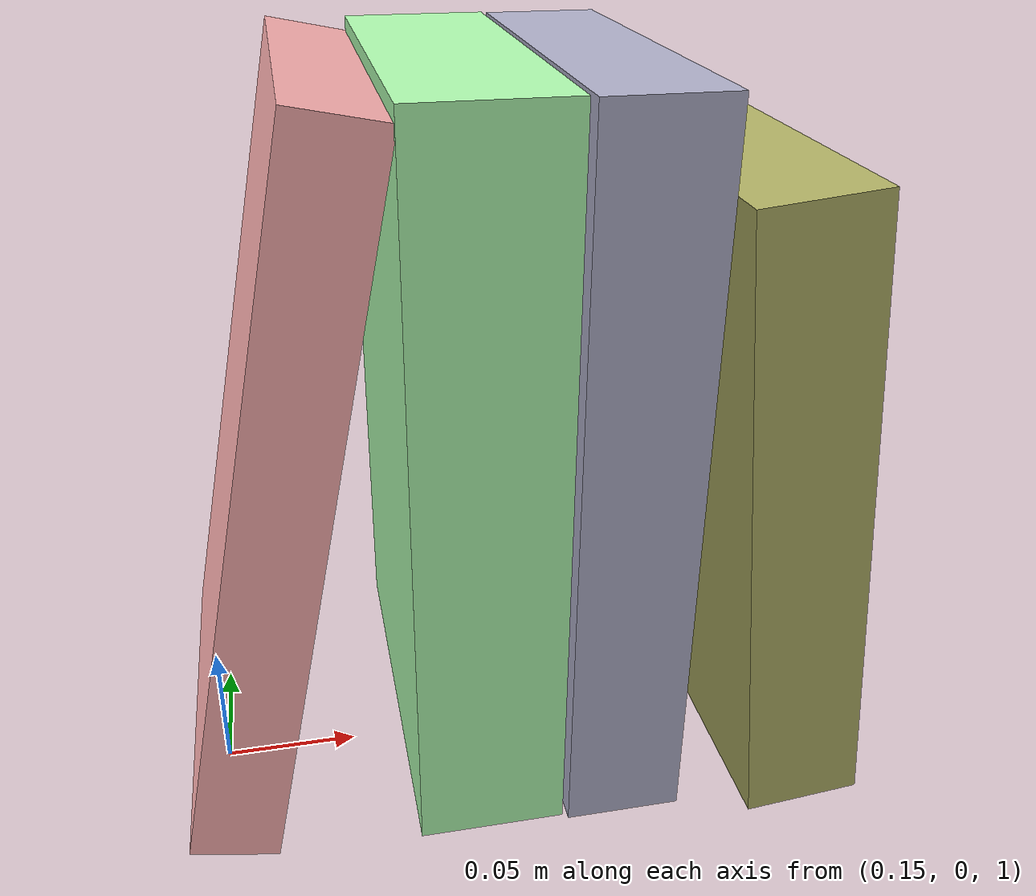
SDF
<?xml version='1.0'?>
<sdf version='1.7'>
  <model name='my_books'>
    <link name='link'>
      <inertial>
        <mass>1</mass>
        <inertia>
          <ixx>0.166667</ixx>
          <ixy>0</ixy>
          <ixz>0</ixz>
          <iyy>0.166667</iyy>
          <iyz>0</iyz>
          <izz>0.166667</izz>
        </inertia>
        <pose>0 0 1.15 0 -0 0</pose>
      </inertial>
      <self_collide>0</self_collide>
      <enable_wind>0</enable_wind>
      <kinematic>0</kinematic>
      <pose>0.17974 0 -0.00246 0 -0 0</pose>
      <gravity>1</gravity>
      <visual name='visual'>
        <geometry>
          <box>
            <size>0.03 0.15 0.25</size>
          </box>
        </geometry>
        <material>
          <script>
            <name>Gazebo/Grey</name>
            <uri>file://media/materials/scripts/gazebo.material</uri>
          </script>
          <shader type='pixel'>
            <normal_map>__default__</normal_map>
          </shader>
          <ambient>0.6 0.45 0.3 1</ambient>
          <diffuse>1 0.7 0.7 1</diffuse>
          <specular>0.01 0.01 0.01 1</specular>
          <emissive>0 0 0 1</emissive>
        </material>
        <pose>0 0 1.15 0 0.2 0</pose>
        <transparency>0</transparency>
        <cast_shadows>1</cast_shadows>
      </visual>
      <collision name='collision'>
        <laser_retro>0</laser_retro>
        <max_contacts>10</max_contacts>
        <pose>0 0 1.15 0 0.2 0</pose>
        <geometry>
          <box>
            <size>0.03 0.15 0.25</size>
          </box>
        </geometry>
        <surface>
          <friction>
            <ode>
              <mu>1</mu>
              <mu2>1</mu2>
              <fdir1>0 0 0</fdir1>
              <slip1>0</slip1>
              <slip2>0</slip2>
            </ode>
            <torsional>
              <coefficient>1</coefficient>
              <patch_radius>0</patch_radius>
              <surface_radius>0</surface_radius>
              <use_patch_radius>1</use_patch_radius>
              <ode>
                <slip>0</slip>
              </ode>
            </torsional>
          </friction>
          <bounce>
            <restitution_coefficient>0</restitution_coefficient>
            <threshold>1e+06</threshold>
          </bounce>
          <contact>
            <collide_without_contact>0</collide_without_contact>
            <collide_without_contact_bitmask>1</collide_without_contact_bitmask>
            <collide_bitmask>1</collide_bitmask>
            <ode>
              <soft_cfm>0</soft_cfm>
              <soft_erp>0.2</soft_erp>
              <kp>1e+13</kp>
              <kd>1</kd>
              <max_vel>0.01</max_vel>
              <min_depth>0</min_depth>
            </ode>
            <bullet>
              <split_impulse>1</split_impulse>
              <split_impulse_penetration_threshold>-0.01</split_impulse_penetration_threshold>
              <soft_cfm>0</soft_cfm>
              <soft_erp>0.2</soft_erp>
              <kp>1e+13</kp>
              <kd>1</kd>
            </bullet>
          </contact>
        </surface>
      </collision>
    </link>
    <link name='link_clone'>
      <inertial>
        <mass>1</mass>
        <inertia>
          <ixx>0.166667</ixx>
          <ixy>0</ixy>
          <ixz>0</ixz>
          <iyy>0.166667</iyy>
          <iyz>0</iyz>
          <izz>0.166667</izz>
        </inertia>
        <pose>0 0 1.15 0 -0 0</pose>
      </inertial>
      <self_collide>0</self_collide>
      <enable_wind>0</enable_wind>
      <kinematic>0</kinematic>
      <pose>0.243198 -0.002133 -0.00246 1e-05 -0 0</pose>
      <gravity>1</gravity>
      <visual name='visual'>
        <geometry>
          <box>
            <size>0.05 0.15 0.25</size>
          </box>
        </geometry>
        <material>
          <script>
            <name>Gazebo/Grey</name>
            <uri>file://media/materials/scripts/gazebo.material</uri>
          </script>
          <shader type='pixel'>
            <normal_map>__default__</normal_map>
          </shader>
          <ambient>0.3 0.5 0.3 1</ambient>
          <diffuse>0.7 1 0.7 1</diffuse>
          <specular>0.01 0.01 0.01 1</specular>
          <emissive>0 0 0 1</emissive>
        </material>
        <pose>0 0 1.15 0 -0 0</pose>
        <transparency>0</transparency>
        <cast_shadows>1</cast_shadows>
      </visual>
      <collision name='collision'>
        <laser_retro>0</laser_retro>
        <max_contacts>10</max_contacts>
        <pose>0 0 1.15 0 -0 0</pose>
        <geometry>
          <box>
            <size>0.05 0.15 0.25</size>
          </box>
        </geometry>
        <surface>
          <friction>
            <ode>
              <mu>1</mu>
              <mu2>1</mu2>
              <fdir1>0 0 0</fdir1>
              <slip1>0</slip1>
              <slip2>0</slip2>
            </ode>
            <torsional>
              <coefficient>1</coefficient>
              <patch_radius>0</patch_radius>
              <surface_radius>0</surface_radius>
              <use_patch_radius>1</use_patch_radius>
              <ode>
                <slip>0</slip>
              </ode>
            </torsional>
          </friction>
          <bounce>
            <restitution_coefficient>0</restitution_coefficient>
            <threshold>1e+06</threshold>
          </bounce>
          <contact>
            <collide_without_contact>0</collide_without_contact>
            <collide_without_contact_bitmask>1</collide_without_contact_bitmask>
            <collide_bitmask>1</collide_bitmask>
            <ode>
              <soft_cfm>0</soft_cfm>
              <soft_erp>0.2</soft_erp>
              <kp>1e+13</kp>
              <kd>1</kd>
              <max_vel>0.01</max_vel>
              <min_depth>0</min_depth>
            </ode>
            <bullet>
              <split_impulse>1</split_impulse>
              <split_impulse_penetration_threshold>-0.01</split_impulse_penetration_threshold>
              <soft_cfm>0</soft_cfm>
              <soft_erp>0.2</soft_erp>
              <kp>1e+13</kp>
              <kd>1</kd>
            </bullet>
          </contact>
        </surface>
      </collision>
    </link>
    <link name='link_clone_clone'>
      <inertial>
        <mass>1</mass>
        <inertia>
          <ixx>0.166667</ixx>
          <ixy>0</ixy>
          <ixz>0</ixz>
          <iyy>0.166667</iyy>
          <iyz>0</iyz>
          <izz>0.166667</izz>
        </inertia>
        <pose>0 0 1.15 0 -0 0</pose>
      </inertial>
      <self_collide>0</self_collide>
      <enable_wind>0</enable_wind>
      <kinematic>0</kinematic>
      <pose>0.289882 -0.003921 -0.00246 2e-05 -0 0</pose>
      <gravity>1</gravity>
      <visual name='visual'>
        <geometry>
          <box>
            <size>0.04 0.15 0.25</size>
          </box>
        </geometry>
        <material>
          <script>
            <name>Gazebo/Grey</name>
            <uri>file://media/materials/scripts/gazebo.material</uri>
          </script>
          <shader type='pixel'>
            <normal_map>__default__</normal_map>
          </shader>
          <ambient>0.3 0.3 0.8 1</ambient>
          <diffuse>0.7 0.7 0.8 1</diffuse>
          <specular>0.01 0.01 0.01 1</specular>
          <emissive>0 0 0 1</emissive>
        </material>
        <pose>0 0 1.15 0 -0 0</pose>
        <transparency>0</transparency>
        <cast_shadows>1</cast_shadows>
      </visual>
      <collision name='collision'>
        <laser_retro>0</laser_retro>
        <max_contacts>10</max_contacts>
        <pose>0 0 1.15 0 -0 0</pose>
        <geometry>
          <box>
            <size>0.04 0.15 0.25</size>
          </box>
        </geometry>
        <surface>
          <friction>
            <ode>
              <mu>1</mu>
              <mu2>1</mu2>
              <fdir1>0 0 0</fdir1>
              <slip1>0</slip1>
              <slip2>0</slip2>
            </ode>
            <torsional>
              <coefficient>1</coefficient>
              <patch_radius>0</patch_radius>
              <surface_radius>0</surface_radius>
              <use_patch_radius>1</use_patch_radius>
              <ode>
                <slip>0</slip>
              </ode>
            </torsional>
          </friction>
          <bounce>
            <restitution_coefficient>0</restitution_coefficient>
            <threshold>1e+06</threshold>
          </bounce>
          <contact>
            <collide_without_contact>0</collide_without_contact>
            <collide_without_contact_bitmask>1</collide_without_contact_bitmask>
            <collide_bitmask>1</collide_bitmask>
            <ode>
              <soft_cfm>0</soft_cfm>
              <soft_erp>0.2</soft_erp>
              <kp>1e+13</kp>
              <kd>1</kd>
              <max_vel>0.01</max_vel>
              <min_depth>0</min_depth>
            </ode>
            <bullet>
              <split_impulse>1</split_impulse>
              <split_impulse_penetration_threshold>-0.01</split_impulse_penetration_threshold>
              <soft_cfm>0</soft_cfm>
              <soft_erp>0.2</soft_erp>
              <kp>1e+13</kp>
              <kd>1</kd>
            </bullet>
          </contact>
        </surface>
      </collision>
    </link>
    <link name='link_clone_clone_clone'>
      <inertial>
        <mass>1</mass>
        <inertia>
          <ixx>0.166667</ixx>
          <ixy>0</ixy>
          <ixz>0</ixz>
          <iyy>0.166667</iyy>
          <iyz>0</iyz>
          <izz>0.166667</izz>
        </inertia>
        <pose>0 0 1.15 0 -0 0</pose>
      </inertial>
      <self_collide>0</self_collide>
      <enable_wind>0</enable_wind>
      <kinematic>0</kinematic>
      <pose>0.341401 -0.014976 -0.013259 3e-05 -0 0</pose>
      <gravity>1</gravity>
      <visual name='visual'>
        <geometry>
          <box>
            <size>0.04 0.15 0.22</size>
          </box>
        </geometry>
        <material>
          <script>
            <name>Gazebo/Grey</name>
            <uri>file://media/materials/scripts/gazebo.material</uri>
          </script>
          <shader type='pixel'>
            <normal_map>__default__</normal_map>
          </shader>
          <ambient>0.8 0.5 0.1 1</ambient>
          <diffuse>0.7 0.7 0.4 1</diffuse>
          <specular>0.01 0.01 0.01 1</specular>
          <emissive>0 0 0 1</emissive>
        </material>
        <pose>0 0 1.15 0 -0.1 0</pose>
        <transparency>0</transparency>
        <cast_shadows>1</cast_shadows>
      </visual>
      <collision name='collision'>
        <laser_retro>0</laser_retro>
        <max_contacts>10</max_contacts>
        <pose>0 0 1.15 0 -0.1 0</pose>
        <geometry>
          <box>
            <size>0.04 0.15 0.22</size>
          </box>
        </geometry>
        <surface>
          <friction>
            <ode>
              <mu>1</mu>
              <mu2>1</mu2>
              <fdir1>0 0 0</fdir1>
              <slip1>0</slip1>
              <slip2>0</slip2>
            </ode>
            <torsional>
              <coefficient>1</coefficient>
              <patch_radius>0</patch_radius>
              <surface_radius>0</surface_radius>
              <use_patch_radius>1</use_patch_radius>
              <ode>
                <slip>0</slip>
              </ode>
            </torsional>
          </friction>
          <bounce>
            <restitution_coefficient>0</restitution_coefficient>
            <threshold>1e+06</threshold>
          </bounce>
          <contact>
            <collide_without_contact>0</collide_without_contact>
            <collide_without_contact_bitmask>1</collide_without_contact_bitmask>
            <collide_bitmask>1</collide_bitmask>
            <ode>
              <soft_cfm>0</soft_cfm>
              <soft_erp>0.2</soft_erp>
              <kp>1e+13</kp>
              <kd>1</kd>
              <max_vel>0.01</max_vel>
              <min_depth>0</min_depth>
            </ode>
            <bullet>
              <split_impulse>1</split_impulse>
              <split_impulse_penetration_threshold>-0.01</split_impulse_penetration_threshold>
              <soft_cfm>0</soft_cfm>
              <soft_erp>0.2</soft_erp>
              <kp>1e+13</kp>
              <kd>1</kd>
            </bullet>
          </contact>
        </surface>
      </collision>
    </link>
    <static>1</static>
    <allow_auto_disable>1</allow_auto_disable>
  </model>
</sdf>
